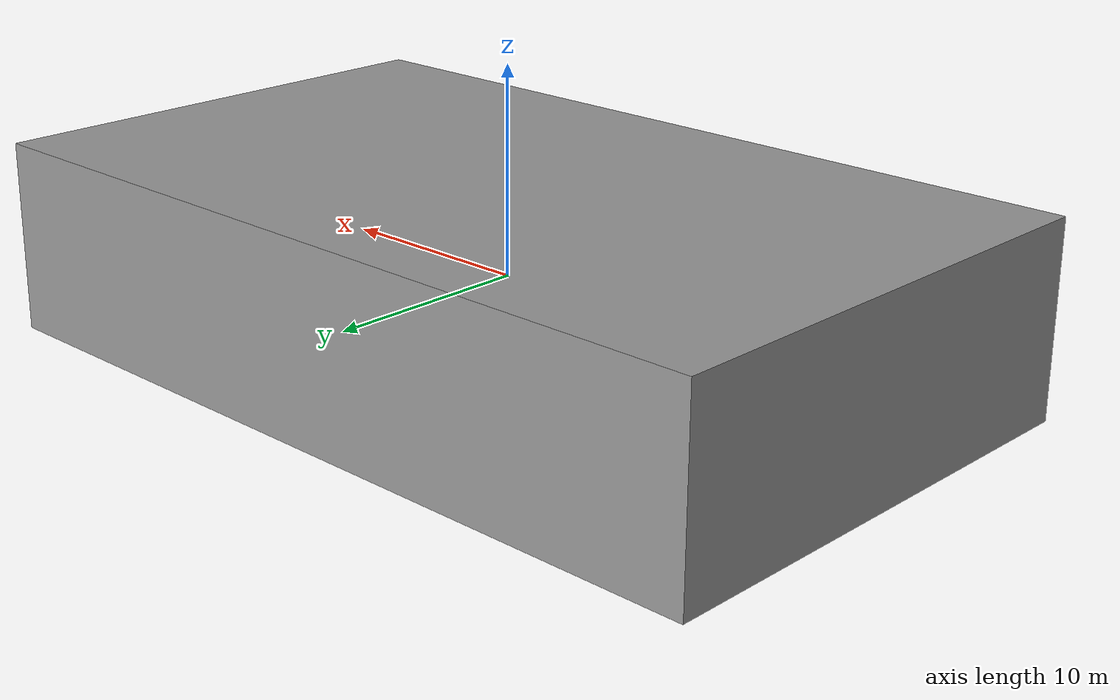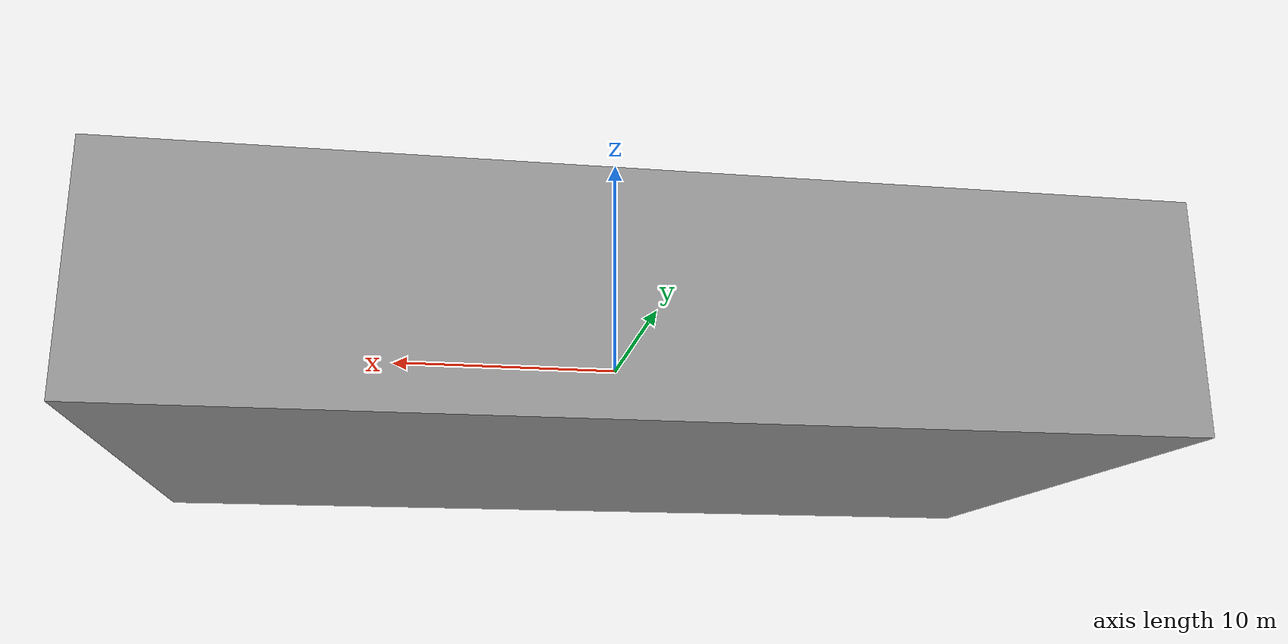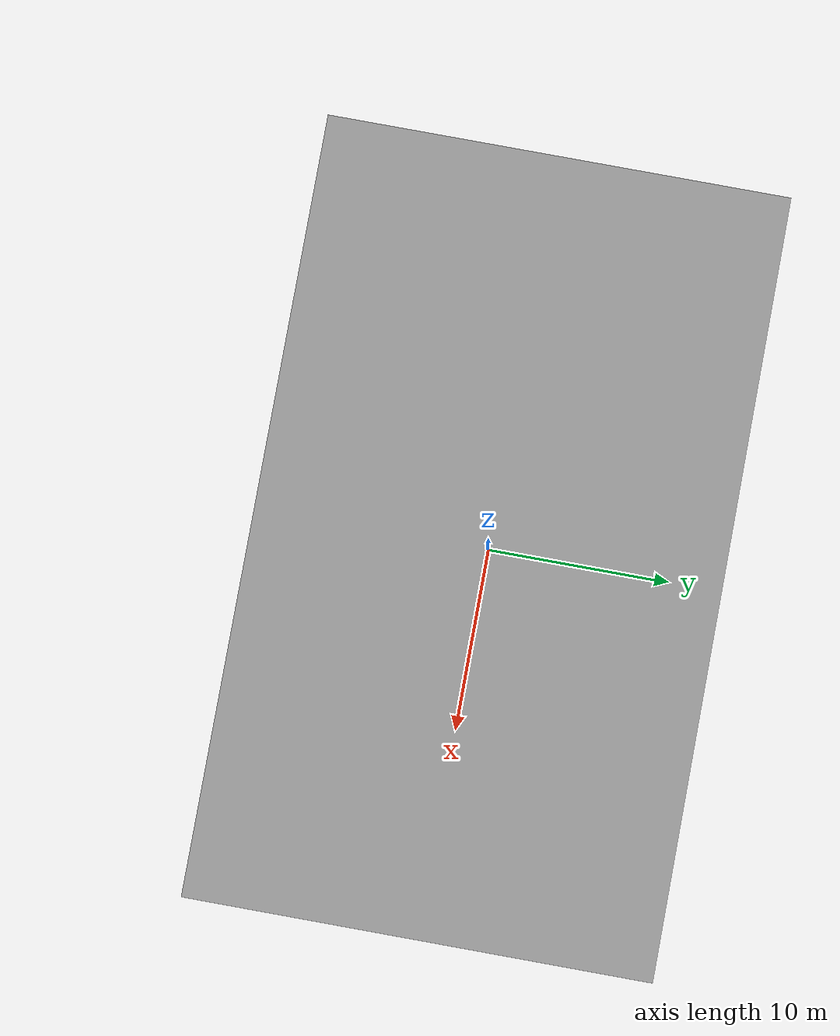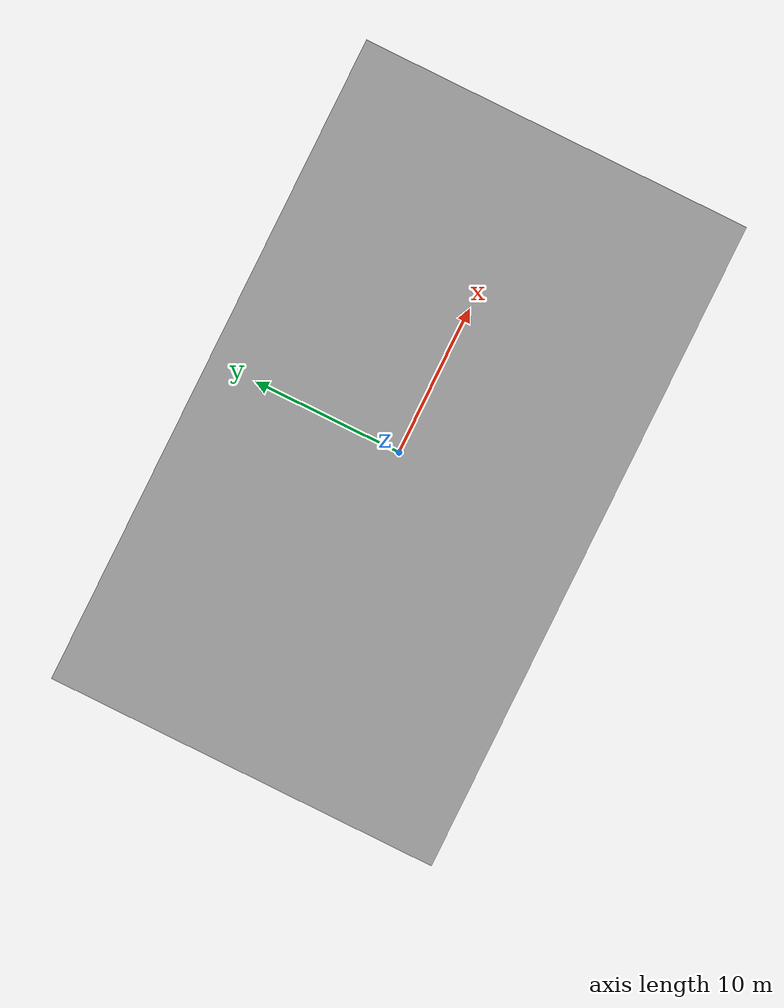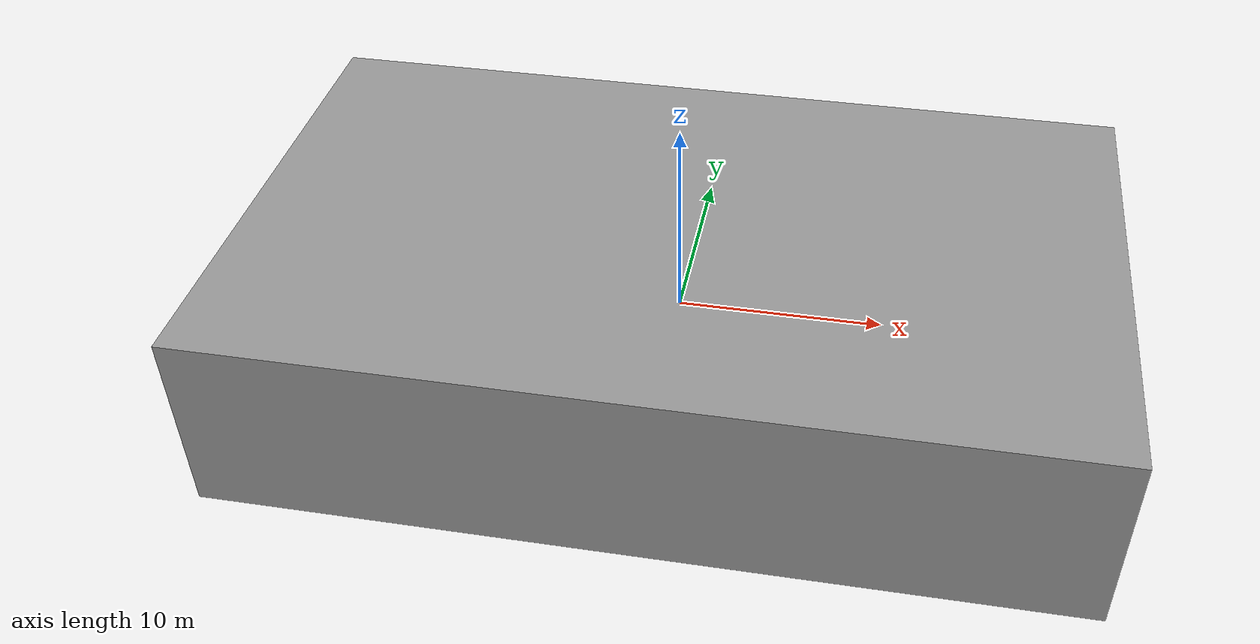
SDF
<?xml version='1.0'?>
<sdf version='1.7'>
  <model name='unit_box_2'>
    <link name='link'>
      <inertial>
        <mass>5.0</mass>
        <inertia>
          <ixx>1.166667</ixx>
          <iyy>1.166667</iyy>
          <izz>1.166667</izz>
        </inertia>
        <pose>0 0 0 0 0 0</pose>
      </inertial>

      <self_collide>false</self_collide>
      <enable_wind>false</enable_wind>
      <kinematic>false</kinematic>
      <pose>0 0 0 0 -0 0</pose>
      <gravity>true</gravity>

      <!-- Visual representation -->
      <visual name='visual'>
        <geometry>
          <box>
            <size>42 25 9.5</size>
          </box>
        </geometry>
        <material>
          <script>
            <name>Gazebo/Grey</name>
            <uri>file://media/materials/scripts/gazebo.material</uri>
          </script>
        </material>
        <pose>0 0 0 0 0 0</pose>
      </visual>

      <!-- Collision shape matching the visual box -->
      <collision name='collision'>
        <laser_retro>1.0</laser_retro>  <!-- Higher value to enhance detection -->
        <geometry>
          <box>
            <size>42 25 5.5</size>
          </box>
        </geometry>
        <pose>0 0 0 0 0 0</pose>
        <surface>
          <friction>
            <ode>
              <mu>1.5</mu>
              <mu2>1.5</mu2>
            </ode>
          </friction>
          <bounce>
            <restitution_coefficient>0.0</restitution_coefficient>
            <threshold>1e+06</threshold>
          </bounce>
          <contact>
            <ode>
              <soft_cfm>0.0</soft_cfm>
              <soft_erp>0.4</soft_erp>  <!-- Better edge compliance -->
              <kp>1e+07</kp>  <!-- High stiffness to prevent penetration -->
              <kd>10.0</kd>  <!-- Damping to stabilize corner contact -->
              <max_vel>0.01</max_vel>
              <min_depth>0.01</min_depth>  <!-- Minimum collision depth to prevent passing through -->
            </ode>
          </contact>
        </surface>
      </collision>
    </link>
    <static>1</static>
    <allow_auto_disable>1</allow_auto_disable>
  </model>
</sdf>
